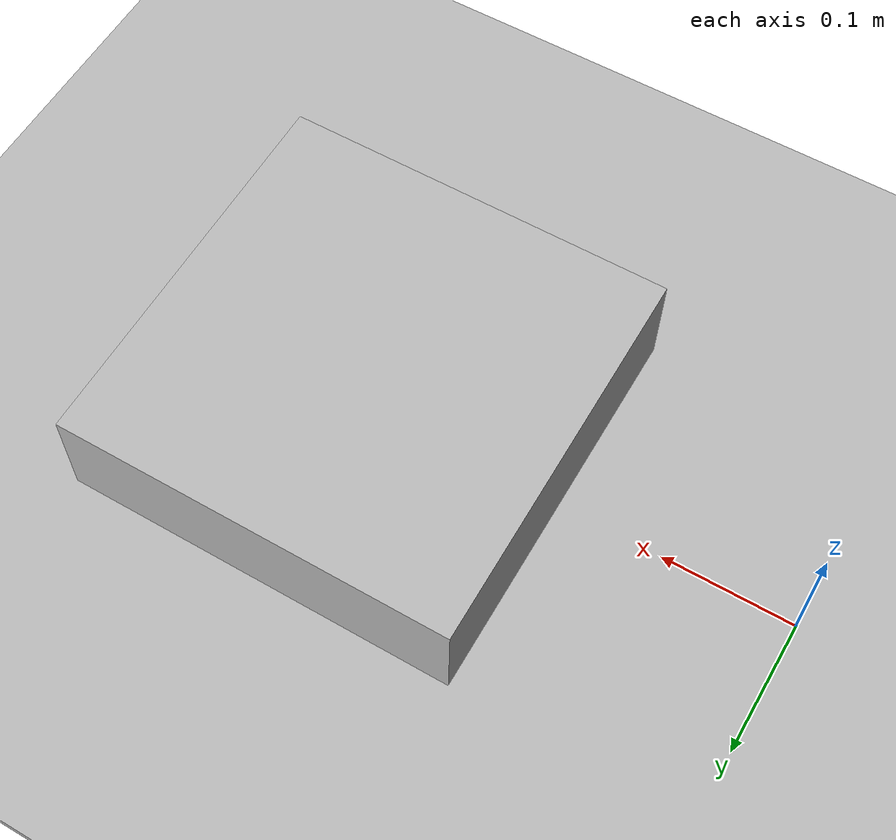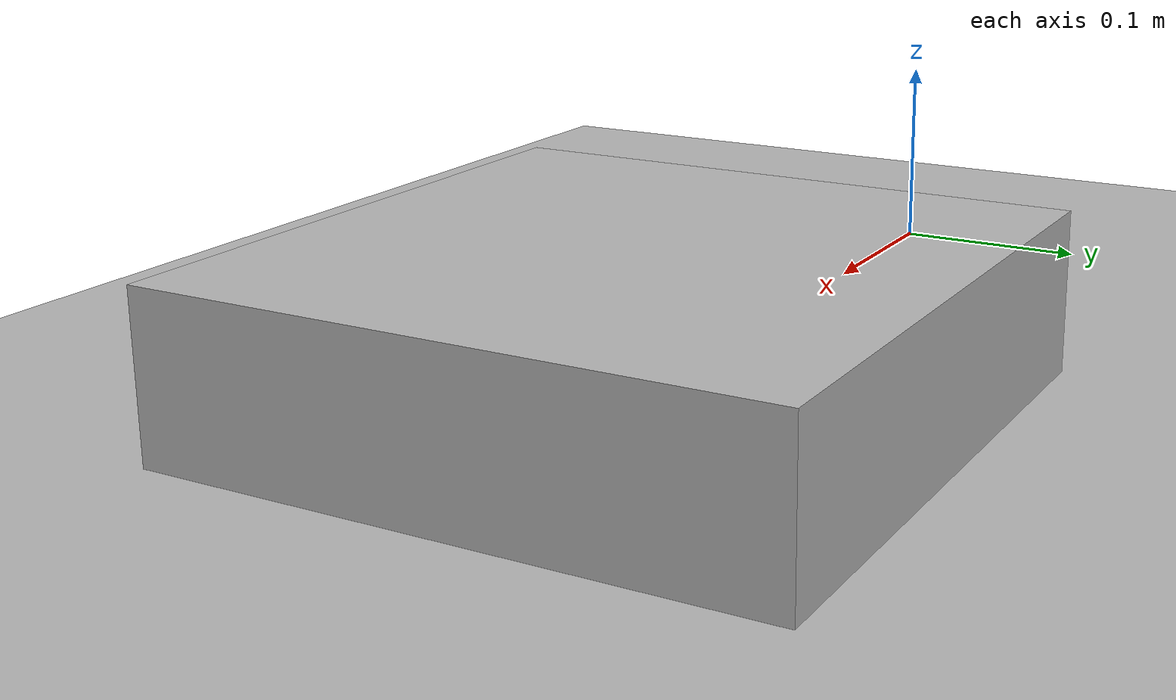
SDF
<?xml version="1.0" ?>
<sdf version="1.4">
  <!-- We use a custom world for the rrbot so that the camera angle is launched correctly -->

  <world name="default">

    <include>
      <uri>model://ground_plane_invisible</uri>
    </include>

    <include>
      <uri>model://perception_lab</uri>
      <pose>0 0 -0.013 0 0 0</pose>
    </include>

    <include>
      <uri>model://perception_table</uri>
      <pose>0.3295 0 0.032 0 0 0</pose>
    </include>

        <light name='user_point_light_1' type='point'>
      <pose>0.0 -8.0 5.0 0 -0 0</pose>
      <diffuse>0.5 0.5 0.5 1</diffuse>
      <specular>0.1 0.1 0.1 1</specular>
      <attenuation>
        <range>20</range>
        <constant>0.2</constant>
        <linear>0.06</linear>
        <quadratic>0.001</quadratic>
      </attenuation>
      <cast_shadows>0</cast_shadows>
      <direction>0 0 -1</direction>
    </light>

        <light name='user_point_light_2' type='point'>
      <pose>0.0 8.0 5.0 0 -0 0</pose>
      <diffuse>0.5 0.5 0.5 1</diffuse>
      <specular>0.1 0.1 0.1 1</specular>
      <attenuation>
        <range>20</range>
        <constant>0.2</constant>
        <linear>0.06</linear>
        <quadratic>0.001</quadratic>
      </attenuation>
      <cast_shadows>0</cast_shadows>
      <direction>0 0 -1</direction>
    </light>

        <plugin name="gazebo_ros_state" filename="libgazebo_ros_state.so">
      <ros>
        <namespace>/gazebo</namespace>
      </ros>
      <update_rate>5.0</update_rate>
    </plugin>

  </world>
</sdf>

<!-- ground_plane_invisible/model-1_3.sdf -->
<sdf version="1.3">
  <model name="ground_plane">
    <static>true</static>
    <link name="link">
      <collision name="collision">
        <geometry>
          <plane>
            <normal>0 0 1</normal>
            <size>100 100</size>
          </plane>
        </geometry>
        <surface>
          <friction>
            <ode>
              <mu>100</mu>
              <mu2>50</mu2>
            </ode>
          </friction>
        </surface>
      </collision>

    </link>
  </model>
</sdf>

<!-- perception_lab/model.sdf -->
<sdf version='1.4'>
  <model name="perception_lab">
      <static>1</static>
      <link name='link'>
        <visual name='visual'>
          <geometry>
            <mesh>
              <uri>model://perception_lab/meshes/perception_plane_v2.dae</uri>
              <scale>1.0 1.0 1.0</scale>
            </mesh>
          </geometry>
        </visual>
        <velocity_decay>
          <linear>0.000000</linear>
          <angular>0.000000</angular>
        </velocity_decay>
        <self_collide>0</self_collide>
        <kinematic>0</kinematic>
        <gravity>1</gravity>
      </link>
  </model>
</sdf>

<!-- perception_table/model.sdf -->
<sdf version='1.4'>
  <model name="perception_table">
      <static>1</static>
      <link name='perception_table_link'>
        <visual name='perception_table_visual'>
          <geometry>
            <box>
              <size>0.3 0.3 0.08</size>
            </box>
          </geometry>
        </visual>
        <collision name='perception_table_collision'>
          <geometry>
            <box>
              <size>0.3 0.3 0.08</size>
            </box>
          </geometry>
        </collision>
      </link>
  </model>
</sdf>
